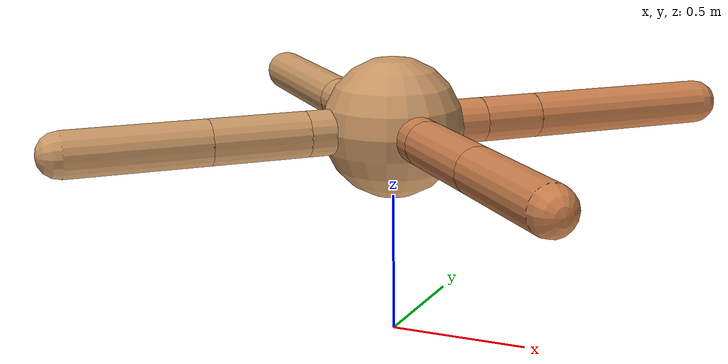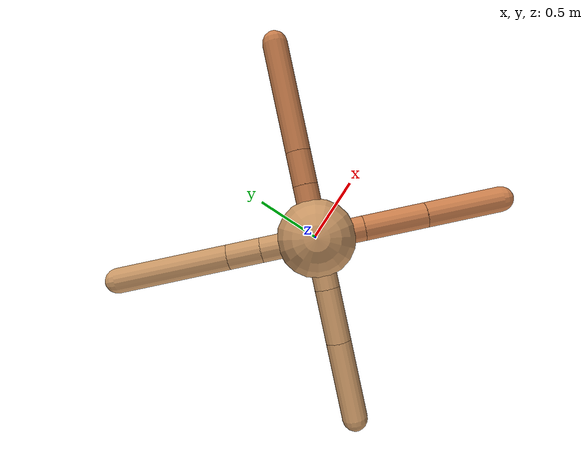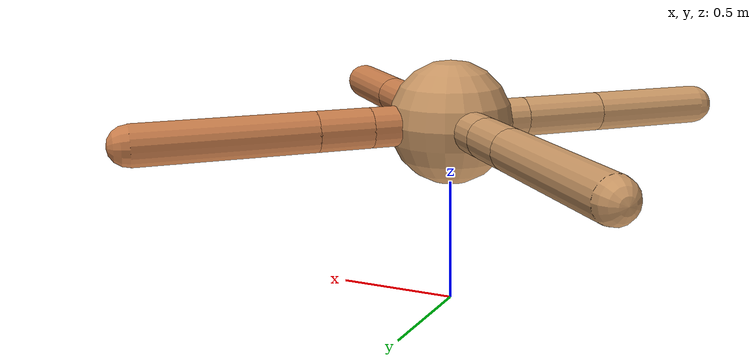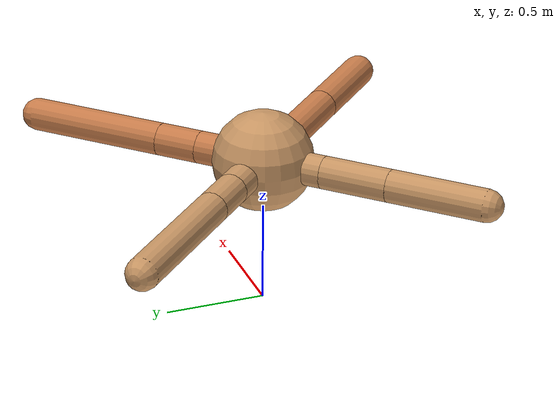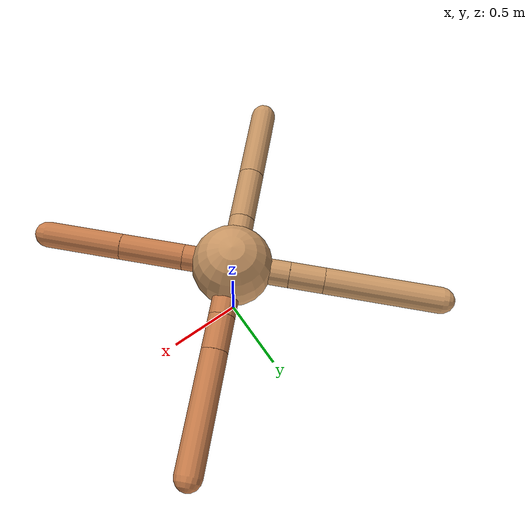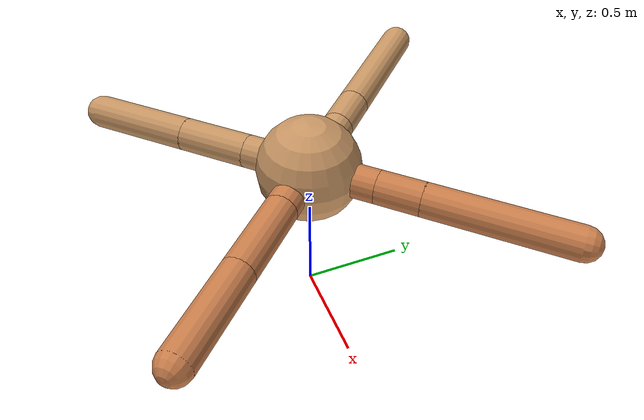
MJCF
<mujoco model="ant">
  <compiler angle="degree" coordinate="local" inertiafromgeom="true" />
  <option integrator="RK4" timestep="0.01" />
  <custom>
    <numeric data="0.0 0.0 0.55 1.0 0.0 0.0 0.0 0.0 1.0 0.0 -1.0 0.0 -1.0 0.0 1.0" name="init_qpos" />
  </custom>
  <default>
    <joint armature="1" damping="1" limited="true" />
    <geom conaffinity="0" condim="3" density="5.0" friction="1.5 0.1 0.1" margin="0.01" rgba="0.8 0.6 0.4 1" />
  </default>
  <worldbody>
    <body name="torso" pos="0 0 0.75">
      <geom name="torso_geom" pos="0 0 0" size="0.25" type="sphere" />

      <body name="front_left_leg" pos="0 0 0">
        <geom fromto="0.0 0.0 0.0 0.23939695654139445 0.23939695654139445 0.0" name="aux_1_geom" size="0.08" type="capsule" rgba=".8 .5 .3 1" />
        <body name="aux_1" pos="0.23939695654139445 0.23939695654139445 0.0">
          <joint axis="0 0 1" name="hip_1" pos="0.0 0.0 0.0" range="-40 40" type="hinge" />
          <geom fromto="0.0 0.0 0.0 0.15130748844164044 0.15130748844164044 0.0" name="left_leg_geom" size="0.08" type="capsule" rgba=".8 .5 .3 1" />
          <body pos="0.15130748844164044 0.15130748844164044 0.0" name="front_left_foot">
            <joint axis="-1 1 0" name="ankle_1" pos="0.0 0.0 0.0" range="30 100" type="hinge" />
            <geom fromto="0.0 0.0 0.0 0.4879544072372197 0.4879544072372197 0.0" name="left_ankle_geom" size="0.08" type="capsule" rgba=".8 .5 .3 1" />
          </body>
        </body>
      </body>
      <body name="front_right_leg" pos="0 0 0">
        <geom fromto="0.0 0.0 0.0 -0.248361418484821 0.248361418484821 0.0" name="aux_2_geom" size="0.08" type="capsule" />
        <body name="aux_2" pos="-0.248361418484821 0.248361418484821 0.0">
          <joint axis="0 0 1" name="hip_2" pos="0.0 0.0 0.0" range="-40 40" type="hinge" />
          <geom fromto="0.0 0.0 0.0 -0.14944029005645346 0.14944029005645346 0.0" name="right_leg_geom" size="0.08" type="capsule" />
          <body pos="-0.14944029005645346 0.14944029005645346 0.0" name="front_right_foot">
            <joint axis="1 1 0" name="ankle_2" pos="0.0 0.0 0.0" range="-100 -30" type="hinge" />
            <geom fromto="0.0 0.0 0.0 -0.4961608339783144 0.4961608339783144 0.0" name="right_ankle_geom" size="0.08" type="capsule" />
          </body>
        </body>
      </body>
      <body name="left_back_leg" pos="0 0 0">
        <geom fromto="0.0 0.0 0.0 -0.22633805999848572 -0.22633805999848572 0.0" name="aux_3_geom" size="0.08" type="capsule" />
        <body name="aux_3" pos="-0.22633805999848572 -0.22633805999848572 0.0">
          <joint axis="0 0 1" name="hip_3" pos="0.0 0.0 0.0" range="-40 40" type="hinge" />
          <geom fromto="0.0 0.0 0.0 -0.23958460552408437 -0.23958460552408437 0.0" name="back_leg_geom" size="0.08" type="capsule" />
          <body pos="-0.23958460552408437 -0.23958460552408437 0.0" name="left_back_foot">
            <joint axis="-1 1 0" name="ankle_3" pos="0.0 0.0 0.0" range="-100 -30" type="hinge" />
            <geom fromto="0.0 0.0 0.0 -0.3455193679317089 -0.3455193679317089 0.0" name="third_ankle_geom" size="0.08" type="capsule" />
          </body>
        </body>
      </body>
      <body name="right_back_leg" pos="0 0 0">
        <geom fromto="0.0 0.0 0.0 0.21512861580530226 -0.21512861580530226 0.0" name="aux_4_geom" size="0.08" type="capsule" rgba=".8 .5 .3 1" />
        <body name="aux_4" pos="0.21512861580530226 -0.21512861580530226 0.0">
          <joint axis="0 0 1" name="hip_4" pos="0.0 0.0 0.0" range="-40 40" type="hinge" />
          <geom fromto="0.0 0.0 0.0 0.27787100767583456 -0.27787100767583456 0.0" name="rightback_leg_geom" size="0.08" type="capsule" rgba=".8 .5 .3 1" />
          <body pos="0.27787100767583456 -0.27787100767583456 0.0" name="right_back_foot">
            <joint axis="1 1 0" name="ankle_4" pos="0.0 0.0 0.0" range="30 100" type="hinge" />
            <geom fromto="0.0 0.0 0.0 0.33687017519464296 -0.33687017519464296 0.0" name="fourth_ankle_geom" size="0.08" type="capsule" rgba=".8 .5 .3 1" />
          </body>
        </body>
      </body>
    </body>
  </worldbody>
  <actuator>
    <motor ctrllimited="true" ctrlrange="-1.0 1.0" joint="hip_4" gear="150" />
    <motor ctrllimited="true" ctrlrange="-1.0 1.0" joint="ankle_4" gear="150" />
    <motor ctrllimited="true" ctrlrange="-1.0 1.0" joint="hip_1" gear="150" />
    <motor ctrllimited="true" ctrlrange="-1.0 1.0" joint="ankle_1" gear="150" />
    <motor ctrllimited="true" ctrlrange="-1.0 1.0" joint="hip_2" gear="150" />
    <motor ctrllimited="true" ctrlrange="-1.0 1.0" joint="ankle_2" gear="150" />
    <motor ctrllimited="true" ctrlrange="-1.0 1.0" joint="hip_3" gear="150" />
    <motor ctrllimited="true" ctrlrange="-1.0 1.0" joint="ankle_3" gear="150" />
  </actuator>
</mujoco>
